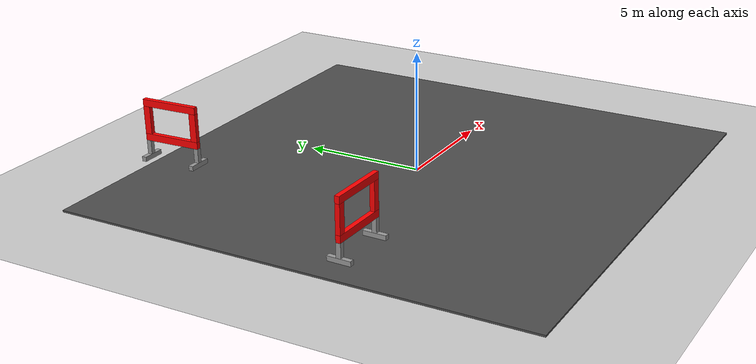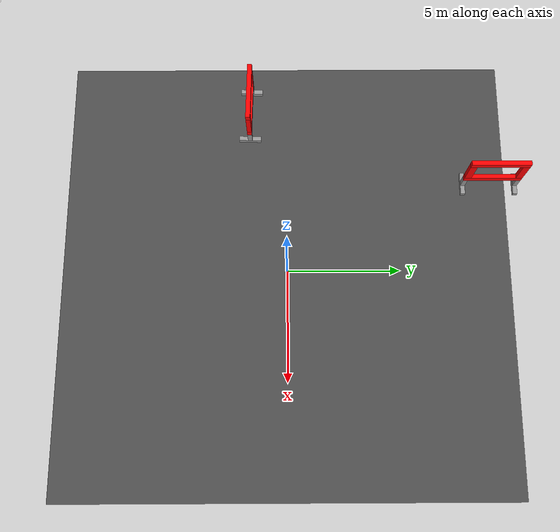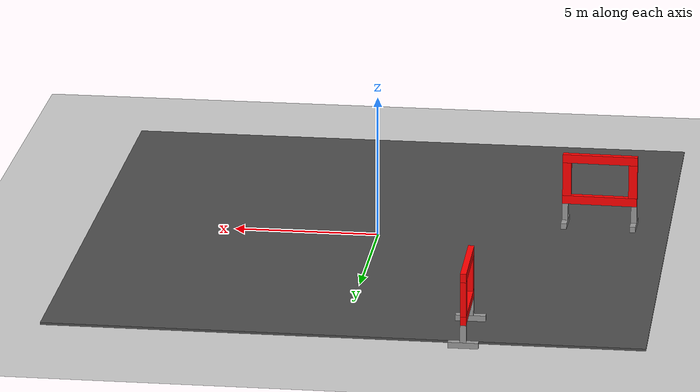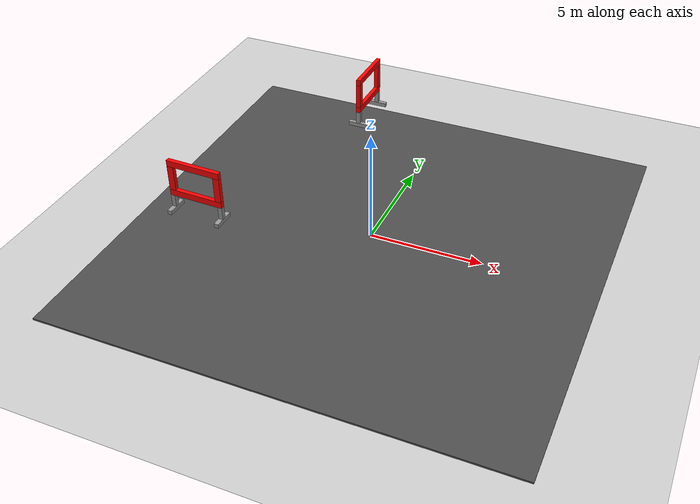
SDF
<sdf version="1.6">
 <world name="default">
  <model name="ground_plane">
   <static>1</static>
   <link name="link">
    <collision name="collision">
     <geometry><plane><normal>0 0 1</normal><size>100 100</size></plane></geometry>
     <surface>
      <contact><collide_bitmask>65535</collide_bitmask></contact>
      <friction><ode><mu>100</mu><mu2>50</mu2></ode></friction>
     </surface>
    </collision>
    <visual name="visual">
     <cast_shadows>0</cast_shadows>
     <geometry><plane><normal>0 0 1</normal><size>100 100</size></plane></geometry>
     <material>
      <script><uri>file://media/materials/scripts/gazebo.material</uri><name>Gazebo/Grey</name></script>
     </material>
    </visual>
   </link>
  </model>
  <model name="asphalt_plane">
   <static>1</static>
   <link name="link">
    <collision name="collision"><geometry><box><size>20 20 0.1</size></box></geometry></collision>
    <visual name="visual">
     <cast_shadows>0</cast_shadows>
     <geometry><box><size>20 20 0.1</size></box></geometry>
     <material>
      <script>
       <uri>model://asphalt_plane/materials/scripts</uri>
       <uri>model://asphalt_plane/materials/textures</uri>
       <name>vrc/asphalt</name>
      </script>
     </material>
    </visual>
   </link>
   <pose>-0.002774 -0.037133 0 0 -0 0</pose>
  </model>
  <model name="door_2_1.2_0_clone">
   <model name="door">
    <link name="link_0">
     <inertial>
      <mass>1</mass>
      <inertia>
       <ixx>0.166667</ixx>
       <ixy>0</ixy>
       <ixz>0</ixz>
       <iyy>0.166667</iyy>
       <iyz>0</iyz>
       <izz>0.166667</izz>
      </inertia>
     </inertial>
     <pose>-0.195931 0.139969 -0.0875 0 -0 0</pose>
     <visual name="visual">
      <geometry><box><size>0.2 1 0.2</size></box></geometry>
      <material>
       <lighting>1</lighting>
       <script><uri>file://media/materials/scripts/gazebo.material</uri><name>Gazebo/Grey</name></script>
       <shader type="pixel"><normal_map>__default__</normal_map></shader>
       <ambient>0.4 0.4 0.4 1</ambient>
       <diffuse>0.7 0.7 0.7 1</diffuse>
       <specular>0.01 0.01 0.01 1</specular>
       <emissive>0 0 0 1</emissive>
      </material>
     </visual>
     <collision name="collision">
      <geometry><box><size>0.2 1 0.2</size></box></geometry>
      <surface>
       <friction>
        <ode><mu>1</mu><mu2>1</mu2><fdir1>0 0 0</fdir1><slip1>0</slip1><slip2>0</slip2></ode>
        <torsional>
         <coefficient>1</coefficient>
         <patch_radius>0</patch_radius>
         <surface_radius>0</surface_radius>
         <use_patch_radius>1</use_patch_radius>
         <ode><slip>0</slip></ode>
        </torsional>
       </friction>
       <bounce><restitution_coefficient>0</restitution_coefficient><threshold>1e+06</threshold></bounce>
       <contact>
        <collide_without_contact>0</collide_without_contact>
        <collide_without_contact_bitmask>1</collide_without_contact_bitmask>
        <collide_bitmask>1</collide_bitmask>
        <ode>
         <soft_cfm>0</soft_cfm>
         <soft_erp>0.2</soft_erp>
         <kp>1e+13</kp>
         <kd>1</kd>
         <max_vel>0.01</max_vel>
         <min_depth>0</min_depth>
        </ode>
        <bullet>
         <split_impulse>1</split_impulse>
         <split_impulse_penetration_threshold>-0.01</split_impulse_penetration_threshold>
         <soft_cfm>0</soft_cfm>
         <soft_erp>0.2</soft_erp>
         <kp>1e+13</kp>
         <kd>1</kd>
        </bullet>
       </contact>
      </surface>
     </collision>
    </link>
    <link name="link_0_clone">
     <inertial>
      <mass>1</mass>
      <inertia>
       <ixx>0.166667</ixx>
       <ixy>0</ixy>
       <ixz>0</ixz>
       <iyy>0.166667</iyy>
       <iyz>0</iyz>
       <izz>0.166667</izz>
      </inertia>
     </inertial>
     <pose>2.20407 0.139969 -0.0875 0 -0 0</pose>
     <visual name="visual">
      <geometry><box><size>0.2 1 0.2</size></box></geometry>
      <material>
       <lighting>1</lighting>
       <script><uri>file://media/materials/scripts/gazebo.material</uri><name>Gazebo/Grey</name></script>
       <shader type="pixel"><normal_map>__default__</normal_map></shader>
       <ambient>0.4 0.4 0.4 1</ambient>
       <diffuse>0.7 0.7 0.7 1</diffuse>
       <specular>0.01 0.01 0.01 1</specular>
       <emissive>0 0 0 1</emissive>
      </material>
     </visual>
     <collision name="collision">
      <geometry><box><size>0.2 1 0.2</size></box></geometry>
      <surface>
       <friction>
        <ode><mu>1</mu><mu2>1</mu2><fdir1>0 0 0</fdir1><slip1>0</slip1><slip2>0</slip2></ode>
        <torsional>
         <coefficient>1</coefficient>
         <patch_radius>0</patch_radius>
         <surface_radius>0</surface_radius>
         <use_patch_radius>1</use_patch_radius>
         <ode><slip>0</slip></ode>
        </torsional>
       </friction>
       <bounce><restitution_coefficient>0</restitution_coefficient><threshold>1e+06</threshold></bounce>
       <contact>
        <collide_without_contact>0</collide_without_contact>
        <collide_without_contact_bitmask>1</collide_without_contact_bitmask>
        <collide_bitmask>1</collide_bitmask>
        <ode>
         <soft_cfm>0</soft_cfm>
         <soft_erp>0.2</soft_erp>
         <kp>1e+13</kp>
         <kd>1</kd>
         <max_vel>0.01</max_vel>
         <min_depth>0</min_depth>
        </ode>
        <bullet>
         <split_impulse>1</split_impulse>
         <split_impulse_penetration_threshold>-0.01</split_impulse_penetration_threshold>
         <soft_cfm>0</soft_cfm>
         <soft_erp>0.2</soft_erp>
         <kp>1e+13</kp>
         <kd>1</kd>
        </bullet>
       </contact>
      </surface>
     </collision>
    </link>
    <link name="link_1">
     <inertial>
      <mass>1</mass>
      <inertia>
       <ixx>0.166667</ixx>
       <ixy>0</ixy>
       <ixz>0</ixz>
       <iyy>0.166667</iyy>
       <iyz>0</iyz>
       <izz>0.166667</izz>
      </inertia>
     </inertial>
     <pose>-0.195931 0.139969 0.3125 0 -0 0</pose>
     <visual name="visual">
      <geometry><box><size>0.2 0.2 0.6</size></box></geometry>
      <material>
       <lighting>1</lighting>
       <script><uri>file://media/materials/scripts/gazebo.material</uri><name>Gazebo/Grey</name></script>
       <shader type="pixel"><normal_map>__default__</normal_map></shader>
       <ambient>0.4 0.4 0.4 1</ambient>
       <diffuse>0.7 0.7 0.7 1</diffuse>
       <specular>0.01 0.01 0.01 1</specular>
       <emissive>0 0 0 1</emissive>
      </material>
     </visual>
     <collision name="collision">
      <geometry><box><size>0.2 0.2 0.6</size></box></geometry>
      <surface>
       <friction>
        <ode><mu>1</mu><mu2>1</mu2><fdir1>0 0 0</fdir1><slip1>0</slip1><slip2>0</slip2></ode>
        <torsional>
         <coefficient>1</coefficient>
         <patch_radius>0</patch_radius>
         <surface_radius>0</surface_radius>
         <use_patch_radius>1</use_patch_radius>
         <ode><slip>0</slip></ode>
        </torsional>
       </friction>
       <bounce><restitution_coefficient>0</restitution_coefficient><threshold>1e+06</threshold></bounce>
       <contact>
        <collide_without_contact>0</collide_without_contact>
        <collide_without_contact_bitmask>1</collide_without_contact_bitmask>
        <collide_bitmask>1</collide_bitmask>
        <ode>
         <soft_cfm>0</soft_cfm>
         <soft_erp>0.2</soft_erp>
         <kp>1e+13</kp>
         <kd>1</kd>
         <max_vel>0.01</max_vel>
         <min_depth>0</min_depth>
        </ode>
        <bullet>
         <split_impulse>1</split_impulse>
         <split_impulse_penetration_threshold>-0.01</split_impulse_penetration_threshold>
         <soft_cfm>0</soft_cfm>
         <soft_erp>0.2</soft_erp>
         <kp>1e+13</kp>
         <kd>1</kd>
        </bullet>
       </contact>
      </surface>
     </collision>
    </link>
    <link name="link_1_clone">
     <inertial>
      <mass>1</mass>
      <inertia>
       <ixx>0.166667</ixx>
       <ixy>0</ixy>
       <ixz>0</ixz>
       <iyy>0.166667</iyy>
       <iyz>0</iyz>
       <izz>0.166667</izz>
      </inertia>
     </inertial>
     <pose>2.20407 0.139969 0.3125 0 -0 0</pose>
     <visual name="visual">
      <geometry><box><size>0.2 0.2 0.6</size></box></geometry>
      <material>
       <lighting>1</lighting>
       <script><uri>file://media/materials/scripts/gazebo.material</uri><name>Gazebo/Grey</name></script>
       <shader type="pixel"><normal_map>__default__</normal_map></shader>
       <ambient>0.4 0.4 0.4 1</ambient>
       <diffuse>0.7 0.7 0.7 1</diffuse>
       <specular>0.01 0.01 0.01 1</specular>
       <emissive>0 0 0 1</emissive>
      </material>
     </visual>
     <collision name="collision">
      <geometry><box><size>0.2 0.2 0.6</size></box></geometry>
      <surface>
       <friction>
        <ode><mu>1</mu><mu2>1</mu2><fdir1>0 0 0</fdir1><slip1>0</slip1><slip2>0</slip2></ode>
        <torsional>
         <coefficient>1</coefficient>
         <patch_radius>0</patch_radius>
         <surface_radius>0</surface_radius>
         <use_patch_radius>1</use_patch_radius>
         <ode><slip>0</slip></ode>
        </torsional>
       </friction>
       <bounce><restitution_coefficient>0</restitution_coefficient><threshold>1e+06</threshold></bounce>
       <contact>
        <collide_without_contact>0</collide_without_contact>
        <collide_without_contact_bitmask>1</collide_without_contact_bitmask>
        <collide_bitmask>1</collide_bitmask>
        <ode>
         <soft_cfm>0</soft_cfm>
         <soft_erp>0.2</soft_erp>
         <kp>1e+13</kp>
         <kd>1</kd>
         <max_vel>0.01</max_vel>
         <min_depth>0</min_depth>
        </ode>
        <bullet>
         <split_impulse>1</split_impulse>
         <split_impulse_penetration_threshold>-0.01</split_impulse_penetration_threshold>
         <soft_cfm>0</soft_cfm>
         <soft_erp>0.2</soft_erp>
         <kp>1e+13</kp>
         <kd>1</kd>
        </bullet>
       </contact>
      </surface>
     </collision>
    </link>
    <link name="link_2">
     <inertial>
      <mass>1</mass>
      <inertia>
       <ixx>0.166667</ixx>
       <ixy>0</ixy>
       <ixz>0</ixz>
       <iyy>0.166667</iyy>
       <iyz>0</iyz>
       <izz>0.166667</izz>
      </inertia>
     </inertial>
     <pose>1.00407 0.139969 0.7625 0 -0 0</pose>
     <visual name="visual">
      <geometry><box><size>2.6 0.2 0.3</size></box></geometry>
      <material>
       <lighting>1</lighting>
       <script><uri>file://media/materials/scripts/gazebo.material</uri><name>Gazebo/Grey</name></script>
       <shader type="pixel"><normal_map>__default__</normal_map></shader>
       <ambient>1 0 0 1</ambient>
       <diffuse>0.7 0.7 0.7 1</diffuse>
       <specular>0.01 0.01 0.01 1</specular>
       <emissive>0 0 0 1</emissive>
      </material>
     </visual>
     <collision name="collision">
      <geometry><box><size>2.6 0.2 0.3</size></box></geometry>
      <surface>
       <friction>
        <ode><mu>1</mu><mu2>1</mu2><fdir1>0 0 0</fdir1><slip1>0</slip1><slip2>0</slip2></ode>
        <torsional>
         <coefficient>1</coefficient>
         <patch_radius>0</patch_radius>
         <surface_radius>0</surface_radius>
         <use_patch_radius>1</use_patch_radius>
         <ode><slip>0</slip></ode>
        </torsional>
       </friction>
       <bounce><restitution_coefficient>0</restitution_coefficient><threshold>1e+06</threshold></bounce>
       <contact>
        <collide_without_contact>0</collide_without_contact>
        <collide_without_contact_bitmask>1</collide_without_contact_bitmask>
        <collide_bitmask>1</collide_bitmask>
        <ode>
         <soft_cfm>0</soft_cfm>
         <soft_erp>0.2</soft_erp>
         <kp>1e+13</kp>
         <kd>1</kd>
         <max_vel>0.01</max_vel>
         <min_depth>0</min_depth>
        </ode>
        <bullet>
         <split_impulse>1</split_impulse>
         <split_impulse_penetration_threshold>-0.01</split_impulse_penetration_threshold>
         <soft_cfm>0</soft_cfm>
         <soft_erp>0.2</soft_erp>
         <kp>1e+13</kp>
         <kd>1</kd>
        </bullet>
       </contact>
      </surface>
     </collision>
    </link>
    <link name="link_2_clone">
     <inertial>
      <mass>1</mass>
      <inertia>
       <ixx>0.166667</ixx>
       <ixy>0</ixy>
       <ixz>0</ixz>
       <iyy>0.166667</iyy>
       <iyz>0</iyz>
       <izz>0.166667</izz>
      </inertia>
     </inertial>
     <pose>1.00407 0.139969 2.2625 0 -0 0</pose>
     <visual name="visual">
      <geometry><box><size>2.6 0.2 0.3</size></box></geometry>
      <material>
       <lighting>1</lighting>
       <script><uri>file://media/materials/scripts/gazebo.material</uri><name>Gazebo/Grey</name></script>
       <shader type="pixel"><normal_map>__default__</normal_map></shader>
       <ambient>1 0 0 1</ambient>
       <diffuse>0 0 0 1</diffuse>
       <specular>0 0 0 1</specular>
       <emissive>0 0 0 1</emissive>
      </material>
     </visual>
     <collision name="collision">
      <geometry><box><size>2.6 0.2 0.3</size></box></geometry>
      <surface>
       <friction>
        <ode><mu>1</mu><mu2>1</mu2><fdir1>0 0 0</fdir1><slip1>0</slip1><slip2>0</slip2></ode>
        <torsional>
         <coefficient>1</coefficient>
         <patch_radius>0</patch_radius>
         <surface_radius>0</surface_radius>
         <use_patch_radius>1</use_patch_radius>
         <ode><slip>0</slip></ode>
        </torsional>
       </friction>
       <bounce><restitution_coefficient>0</restitution_coefficient><threshold>1e+06</threshold></bounce>
       <contact>
        <collide_without_contact>0</collide_without_contact>
        <collide_without_contact_bitmask>1</collide_without_contact_bitmask>
        <collide_bitmask>1</collide_bitmask>
        <ode>
         <soft_cfm>0</soft_cfm>
         <soft_erp>0.2</soft_erp>
         <kp>1e+13</kp>
         <kd>1</kd>
         <max_vel>0.01</max_vel>
         <min_depth>0</min_depth>
        </ode>
        <bullet>
         <split_impulse>1</split_impulse>
         <split_impulse_penetration_threshold>-0.01</split_impulse_penetration_threshold>
         <soft_cfm>0</soft_cfm>
         <soft_erp>0.2</soft_erp>
         <kp>1e+13</kp>
         <kd>1</kd>
        </bullet>
       </contact>
      </surface>
     </collision>
    </link>
    <link name="link_3">
     <inertial>
      <mass>1</mass>
      <inertia>
       <ixx>0.166667</ixx>
       <ixy>0</ixy>
       <ixz>0</ixz>
       <iyy>0.166667</iyy>
       <iyz>0</iyz>
       <izz>0.166667</izz>
      </inertia>
     </inertial>
     <pose>-0.145931 0.139969 1.5125 0 -0 0</pose>
     <visual name="visual">
      <geometry><box><size>0.3 0.2 1.2</size></box></geometry>
      <material>
       <lighting>1</lighting>
       <script><uri>file://media/materials/scripts/gazebo.material</uri><name>Gazebo/Grey</name></script>
       <shader type="pixel"><normal_map>__default__</normal_map></shader>
       <ambient>1 0 0 1</ambient>
       <diffuse>0.7 0.7 0.7 1</diffuse>
       <specular>0.01 0.01 0.01 1</specular>
       <emissive>0 0 0 1</emissive>
      </material>
     </visual>
     <collision name="collision">
      <geometry><box><size>0.3 0.2 1.2</size></box></geometry>
      <surface>
       <friction>
        <ode><mu>1</mu><mu2>1</mu2><fdir1>0 0 0</fdir1><slip1>0</slip1><slip2>0</slip2></ode>
        <torsional>
         <coefficient>1</coefficient>
         <patch_radius>0</patch_radius>
         <surface_radius>0</surface_radius>
         <use_patch_radius>1</use_patch_radius>
         <ode><slip>0</slip></ode>
        </torsional>
       </friction>
       <bounce><restitution_coefficient>0</restitution_coefficient><threshold>1e+06</threshold></bounce>
       <contact>
        <collide_without_contact>0</collide_without_contact>
        <collide_without_contact_bitmask>1</collide_without_contact_bitmask>
        <collide_bitmask>1</collide_bitmask>
        <ode>
         <soft_cfm>0</soft_cfm>
         <soft_erp>0.2</soft_erp>
         <kp>1e+13</kp>
         <kd>1</kd>
         <max_vel>0.01</max_vel>
         <min_depth>0</min_depth>
        </ode>
        <bullet>
         <split_impulse>1</split_impulse>
         <split_impulse_penetration_threshold>-0.01</split_impulse_penetration_threshold>
         <soft_cfm>0</soft_cfm>
         <soft_erp>0.2</soft_erp>
         <kp>1e+13</kp>
         <kd>1</kd>
        </bullet>
       </contact>
      </surface>
     </collision>
    </link>
    <link name="link_3_clone">
     <inertial>
      <mass>1</mass>
      <inertia>
       <ixx>0.166667</ixx>
       <ixy>0</ixy>
       <ixz>0</ixz>
       <iyy>0.166667</iyy>
       <iyz>0</iyz>
       <izz>0.166667</izz>
      </inertia>
     </inertial>
     <pose>2.15407 0.139969 1.5125 0 -0 0</pose>
     <visual name="visual">
      <geometry><box><size>0.3 0.2 1.2</size></box></geometry>
      <material>
       <lighting>1</lighting>
       <script><uri>file://media/materials/scripts/gazebo.material</uri><name>Gazebo/Grey</name></script>
       <shader type="pixel"><normal_map>__default__</normal_map></shader>
       <ambient>1 0 0 1</ambient>
       <diffuse>0.7 0.7 0.7 1</diffuse>
       <specular>0.01 0.01 0.01 1</specular>
       <emissive>0 0 0 1</emissive>
      </material>
     </visual>
     <collision name="collision">
      <geometry><box><size>0.3 0.2 1.2</size></box></geometry>
      <surface>
       <friction>
        <ode><mu>1</mu><mu2>1</mu2><fdir1>0 0 0</fdir1><slip1>0</slip1><slip2>0</slip2></ode>
        <torsional>
         <coefficient>1</coefficient>
         <patch_radius>0</patch_radius>
         <surface_radius>0</surface_radius>
         <use_patch_radius>1</use_patch_radius>
         <ode><slip>0</slip></ode>
        </torsional>
       </friction>
       <bounce><restitution_coefficient>0</restitution_coefficient><threshold>1e+06</threshold></bounce>
       <contact>
        <collide_without_contact>0</collide_without_contact>
        <collide_without_contact_bitmask>1</collide_without_contact_bitmask>
        <collide_bitmask>1</collide_bitmask>
        <ode>
         <soft_cfm>0</soft_cfm>
         <soft_erp>0.2</soft_erp>
         <kp>1e+13</kp>
         <kd>1</kd>
         <max_vel>0.01</max_vel>
         <min_depth>0</min_depth>
        </ode>
        <bullet>
         <split_impulse>1</split_impulse>
         <split_impulse_penetration_threshold>-0.01</split_impulse_penetration_threshold>
         <soft_cfm>0</soft_cfm>
         <soft_erp>0.2</soft_erp>
         <kp>1e+13</kp>
         <kd>1</kd>
        </bullet>
       </contact>
      </surface>
     </collision>
    </link>
    <joint name="link_0_JOINT_0" type="fixed">
     <parent>link_0</parent>
     <child>link_0_clone</child>
     <physics>
      <ode><limit><cfm>0</cfm><erp>0.2</erp></limit><suspension><cfm>0</cfm><erp>0.2</erp></suspension></ode>
     </physics>
    </joint>
    <joint name="link_0_JOINT_1" type="fixed">
     <parent>link_0</parent>
     <child>link_1</child>
     <physics>
      <ode><limit><cfm>0</cfm><erp>0.2</erp></limit><suspension><cfm>0</cfm><erp>0.2</erp></suspension></ode>
     </physics>
    </joint>
    <joint name="link_0_clone_JOINT_2" type="fixed">
     <parent>link_0_clone</parent>
     <child>link_1_clone</child>
     <physics>
      <ode><limit><cfm>0</cfm><erp>0.2</erp></limit><suspension><cfm>0</cfm><erp>0.2</erp></suspension></ode>
     </physics>
    </joint>
    <joint name="link_1_JOINT_3" type="fixed">
     <parent>link_1</parent>
     <child>link_2</child>
     <physics>
      <ode><limit><cfm>0</cfm><erp>0.2</erp></limit><suspension><cfm>0</cfm><erp>0.2</erp></suspension></ode>
     </physics>
    </joint>
    <joint name="link_2_JOINT_4" type="fixed">
     <parent>link_2</parent>
     <child>link_3</child>
     <physics>
      <ode><limit><cfm>0</cfm><erp>0.2</erp></limit><suspension><cfm>0</cfm><erp>0.2</erp></suspension></ode>
     </physics>
    </joint>
    <joint name="link_2_JOINT_5" type="fixed">
     <parent>link_2</parent>
     <child>link_3_clone</child>
     <physics>
      <ode><limit><cfm>0</cfm><erp>0.2</erp></limit><suspension><cfm>0</cfm><erp>0.2</erp></suspension></ode>
     </physics>
    </joint>
    <joint name="link_2_JOINT_6" type="fixed">
     <parent>link_2</parent>
     <child>link_2_clone</child>
     <physics>
      <ode><limit><cfm>0</cfm><erp>0.2</erp></limit><suspension><cfm>0</cfm><erp>0.2</erp></suspension></ode>
     </physics>
    </joint>
    <static>0</static>
   </model>
   <static>0</static>
   <pose>-3.93041 8.21757 0.235454 -1e-06 0.020905 1.57381</pose>
  </model>
  <model name="door_2_1.2_0_clone_0_clone">
   <model name="door">
    <link name="link_0">
     <inertial>
      <mass>1</mass>
      <inertia>
       <ixx>0.166667</ixx>
       <ixy>0</ixy>
       <ixz>0</ixz>
       <iyy>0.166667</iyy>
       <iyz>0</iyz>
       <izz>0.166667</izz>
      </inertia>
     </inertial>
     <pose>-0.195931 0.139969 -0.0875 0 -0 0</pose>
     <visual name="visual">
      <geometry><box><size>0.2 1 0.2</size></box></geometry>
      <material>
       <lighting>1</lighting>
       <script><uri>file://media/materials/scripts/gazebo.material</uri><name>Gazebo/Grey</name></script>
       <shader type="pixel"><normal_map>__default__</normal_map></shader>
       <ambient>0.4 0.4 0.4 1</ambient>
       <diffuse>0.7 0.7 0.7 1</diffuse>
       <specular>0.01 0.01 0.01 1</specular>
       <emissive>0 0 0 1</emissive>
      </material>
     </visual>
     <collision name="collision">
      <geometry><box><size>0.2 1 0.2</size></box></geometry>
      <surface>
       <friction>
        <ode><mu>1</mu><mu2>1</mu2><fdir1>0 0 0</fdir1><slip1>0</slip1><slip2>0</slip2></ode>
        <torsional>
         <coefficient>1</coefficient>
         <patch_radius>0</patch_radius>
         <surface_radius>0</surface_radius>
         <use_patch_radius>1</use_patch_radius>
         <ode><slip>0</slip></ode>
        </torsional>
       </friction>
       <bounce><restitution_coefficient>0</restitution_coefficient><threshold>1e+06</threshold></bounce>
       <contact>
        <collide_without_contact>0</collide_without_contact>
        <collide_without_contact_bitmask>1</collide_without_contact_bitmask>
        <collide_bitmask>1</collide_bitmask>
        <ode>
         <soft_cfm>0</soft_cfm>
         <soft_erp>0.2</soft_erp>
         <kp>1e+13</kp>
         <kd>1</kd>
         <max_vel>0.01</max_vel>
         <min_depth>0</min_depth>
        </ode>
        <bullet>
         <split_impulse>1</split_impulse>
         <split_impulse_penetration_threshold>-0.01</split_impulse_penetration_threshold>
         <soft_cfm>0</soft_cfm>
         <soft_erp>0.2</soft_erp>
         <kp>1e+13</kp>
         <kd>1</kd>
        </bullet>
       </contact>
      </surface>
     </collision>
    </link>
    <link name="link_0_clone">
     <inertial>
      <mass>1</mass>
      <inertia>
       <ixx>0.166667</ixx>
       <ixy>0</ixy>
       <ixz>0</ixz>
       <iyy>0.166667</iyy>
       <iyz>0</iyz>
       <izz>0.166667</izz>
      </inertia>
     </inertial>
     <pose>2.20407 0.139969 -0.0875 0 -0 0</pose>
     <visual name="visual">
      <geometry><box><size>0.2 1 0.2</size></box></geometry>
      <material>
       <lighting>1</lighting>
       <script><uri>file://media/materials/scripts/gazebo.material</uri><name>Gazebo/Grey</name></script>
       <shader type="pixel"><normal_map>__default__</normal_map></shader>
       <ambient>0.4 0.4 0.4 1</ambient>
       <diffuse>0.7 0.7 0.7 1</diffuse>
       <specular>0.01 0.01 0.01 1</specular>
       <emissive>0 0 0 1</emissive>
      </material>
     </visual>
     <collision name="collision">
      <geometry><box><size>0.2 1 0.2</size></box></geometry>
      <surface>
       <friction>
        <ode><mu>1</mu><mu2>1</mu2><fdir1>0 0 0</fdir1><slip1>0</slip1><slip2>0</slip2></ode>
        <torsional>
         <coefficient>1</coefficient>
         <patch_radius>0</patch_radius>
         <surface_radius>0</surface_radius>
         <use_patch_radius>1</use_patch_radius>
         <ode><slip>0</slip></ode>
        </torsional>
       </friction>
       <bounce><restitution_coefficient>0</restitution_coefficient><threshold>1e+06</threshold></bounce>
       <contact>
        <collide_without_contact>0</collide_without_contact>
        <collide_without_contact_bitmask>1</collide_without_contact_bitmask>
        <collide_bitmask>1</collide_bitmask>
        <ode>
         <soft_cfm>0</soft_cfm>
         <soft_erp>0.2</soft_erp>
         <kp>1e+13</kp>
         <kd>1</kd>
         <max_vel>0.01</max_vel>
         <min_depth>0</min_depth>
        </ode>
        <bullet>
         <split_impulse>1</split_impulse>
         <split_impulse_penetration_threshold>-0.01</split_impulse_penetration_threshold>
         <soft_cfm>0</soft_cfm>
         <soft_erp>0.2</soft_erp>
         <kp>1e+13</kp>
         <kd>1</kd>
        </bullet>
       </contact>
      </surface>
     </collision>
    </link>
    <link name="link_1">
     <inertial>
      <mass>1</mass>
      <inertia>
       <ixx>0.166667</ixx>
       <ixy>0</ixy>
       <ixz>0</ixz>
       <iyy>0.166667</iyy>
       <iyz>0</iyz>
       <izz>0.166667</izz>
      </inertia>
     </inertial>
     <pose>-0.195931 0.139969 0.3125 0 -0 0</pose>
     <visual name="visual">
      <geometry><box><size>0.2 0.2 0.6</size></box></geometry>
      <material>
       <lighting>1</lighting>
       <script><uri>file://media/materials/scripts/gazebo.material</uri><name>Gazebo/Grey</name></script>
       <shader type="pixel"><normal_map>__default__</normal_map></shader>
       <ambient>0.4 0.4 0.4 1</ambient>
       <diffuse>0.7 0.7 0.7 1</diffuse>
       <specular>0.01 0.01 0.01 1</specular>
       <emissive>0 0 0 1</emissive>
      </material>
     </visual>
     <collision name="collision">
      <geometry><box><size>0.2 0.2 0.6</size></box></geometry>
      <surface>
       <friction>
        <ode><mu>1</mu><mu2>1</mu2><fdir1>0 0 0</fdir1><slip1>0</slip1><slip2>0</slip2></ode>
        <torsional>
         <coefficient>1</coefficient>
         <patch_radius>0</patch_radius>
         <surface_radius>0</surface_radius>
         <use_patch_radius>1</use_patch_radius>
         <ode><slip>0</slip></ode>
        </torsional>
       </friction>
       <bounce><restitution_coefficient>0</restitution_coefficient><threshold>1e+06</threshold></bounce>
       <contact>
        <collide_without_contact>0</collide_without_contact>
        <collide_without_contact_bitmask>1</collide_without_contact_bitmask>
        <collide_bitmask>1</collide_bitmask>
        <ode>
         <soft_cfm>0</soft_cfm>
         <soft_erp>0.2</soft_erp>
         <kp>1e+13</kp>
         <kd>1</kd>
         <max_vel>0.01</max_vel>
         <min_depth>0</min_depth>
        </ode>
        <bullet>
         <split_impulse>1</split_impulse>
         <split_impulse_penetration_threshold>-0.01</split_impulse_penetration_threshold>
         <soft_cfm>0</soft_cfm>
         <soft_erp>0.2</soft_erp>
         <kp>1e+13</kp>
         <kd>1</kd>
        </bullet>
       </contact>
      </surface>
     </collision>
    </link>
    <link name="link_1_clone">
     <inertial>
      <mass>1</mass>
      <inertia>
       <ixx>0.166667</ixx>
       <ixy>0</ixy>
       <ixz>0</ixz>
       <iyy>0.166667</iyy>
       <iyz>0</iyz>
       <izz>0.166667</izz>
      </inertia>
     </inertial>
     <pose>2.20407 0.139969 0.3125 0 -0 0</pose>
     <visual name="visual">
      <geometry><box><size>0.2 0.2 0.6</size></box></geometry>
      <material>
       <lighting>1</lighting>
       <script><uri>file://media/materials/scripts/gazebo.material</uri><name>Gazebo/Grey</name></script>
       <shader type="pixel"><normal_map>__default__</normal_map></shader>
       <ambient>0.4 0.4 0.4 1</ambient>
       <diffuse>0.7 0.7 0.7 1</diffuse>
       <specular>0.01 0.01 0.01 1</specular>
       <emissive>0 0 0 1</emissive>
      </material>
     </visual>
     <collision name="collision">
      <geometry><box><size>0.2 0.2 0.6</size></box></geometry>
      <surface>
       <friction>
        <ode><mu>1</mu><mu2>1</mu2><fdir1>0 0 0</fdir1><slip1>0</slip1><slip2>0</slip2></ode>
        <torsional>
         <coefficient>1</coefficient>
         <patch_radius>0</patch_radius>
         <surface_radius>0</surface_radius>
         <use_patch_radius>1</use_patch_radius>
         <ode><slip>0</slip></ode>
        </torsional>
       </friction>
       <bounce><restitution_coefficient>0</restitution_coefficient><threshold>1e+06</threshold></bounce>
       <contact>
        <collide_without_contact>0</collide_without_contact>
        <collide_without_contact_bitmask>1</collide_without_contact_bitmask>
        <collide_bitmask>1</collide_bitmask>
        <ode>
         <soft_cfm>0</soft_cfm>
         <soft_erp>0.2</soft_erp>
         <kp>1e+13</kp>
         <kd>1</kd>
         <max_vel>0.01</max_vel>
         <min_depth>0</min_depth>
        </ode>
        <bullet>
         <split_impulse>1</split_impulse>
         <split_impulse_penetration_threshold>-0.01</split_impulse_penetration_threshold>
         <soft_cfm>0</soft_cfm>
         <soft_erp>0.2</soft_erp>
         <kp>1e+13</kp>
         <kd>1</kd>
        </bullet>
       </contact>
      </surface>
     </collision>
    </link>
    <link name="link_2">
     <inertial>
      <mass>1</mass>
      <inertia>
       <ixx>0.166667</ixx>
       <ixy>0</ixy>
       <ixz>0</ixz>
       <iyy>0.166667</iyy>
       <iyz>0</iyz>
       <izz>0.166667</izz>
      </inertia>
     </inertial>
     <pose>1.00407 0.139969 0.7625 0 -0 0</pose>
     <visual name="visual">
      <geometry><box><size>2.6 0.2 0.3</size></box></geometry>
      <material>
       <lighting>1</lighting>
       <script><uri>file://media/materials/scripts/gazebo.material</uri><name>Gazebo/Grey</name></script>
       <shader type="pixel"><normal_map>__default__</normal_map></shader>
       <ambient>1 0 0 1</ambient>
       <diffuse>0.7 0.7 0.7 1</diffuse>
       <specular>0.01 0.01 0.01 1</specular>
       <emissive>0 0 0 1</emissive>
      </material>
     </visual>
     <collision name="collision">
      <geometry><box><size>2.6 0.2 0.3</size></box></geometry>
      <surface>
       <friction>
        <ode><mu>1</mu><mu2>1</mu2><fdir1>0 0 0</fdir1><slip1>0</slip1><slip2>0</slip2></ode>
        <torsional>
         <coefficient>1</coefficient>
         <patch_radius>0</patch_radius>
         <surface_radius>0</surface_radius>
         <use_patch_radius>1</use_patch_radius>
         <ode><slip>0</slip></ode>
        </torsional>
       </friction>
       <bounce><restitution_coefficient>0</restitution_coefficient><threshold>1e+06</threshold></bounce>
       <contact>
        <collide_without_contact>0</collide_without_contact>
        <collide_without_contact_bitmask>1</collide_without_contact_bitmask>
        <collide_bitmask>1</collide_bitmask>
        <ode>
         <soft_cfm>0</soft_cfm>
         <soft_erp>0.2</soft_erp>
         <kp>1e+13</kp>
         <kd>1</kd>
         <max_vel>0.01</max_vel>
         <min_depth>0</min_depth>
        </ode>
        <bullet>
         <split_impulse>1</split_impulse>
         <split_impulse_penetration_threshold>-0.01</split_impulse_penetration_threshold>
         <soft_cfm>0</soft_cfm>
         <soft_erp>0.2</soft_erp>
         <kp>1e+13</kp>
         <kd>1</kd>
        </bullet>
       </contact>
      </surface>
     </collision>
    </link>
    <link name="link_2_clone">
     <inertial>
      <mass>1</mass>
      <inertia>
       <ixx>0.166667</ixx>
       <ixy>0</ixy>
       <ixz>0</ixz>
       <iyy>0.166667</iyy>
       <iyz>0</iyz>
       <izz>0.166667</izz>
      </inertia>
     </inertial>
     <pose>1.00407 0.139969 2.2625 0 -0 0</pose>
     <visual name="visual">
      <geometry><box><size>2.6 0.2 0.3</size></box></geometry>
      <material>
       <lighting>1</lighting>
       <script><uri>file://media/materials/scripts/gazebo.material</uri><name>Gazebo/Grey</name></script>
       <shader type="pixel"><normal_map>__default__</normal_map></shader>
       <ambient>1 0 0 1</ambient>
       <diffuse>0 0 0 1</diffuse>
       <specular>0 0 0 1</specular>
       <emissive>0 0 0 1</emissive>
      </material>
     </visual>
     <collision name="collision">
      <geometry><box><size>2.6 0.2 0.3</size></box></geometry>
      <surface>
       <friction>
        <ode><mu>1</mu><mu2>1</mu2><fdir1>0 0 0</fdir1><slip1>0</slip1><slip2>0</slip2></ode>
        <torsional>
         <coefficient>1</coefficient>
         <patch_radius>0</patch_radius>
         <surface_radius>0</surface_radius>
         <use_patch_radius>1</use_patch_radius>
         <ode><slip>0</slip></ode>
        </torsional>
       </friction>
       <bounce><restitution_coefficient>0</restitution_coefficient><threshold>1e+06</threshold></bounce>
       <contact>
        <collide_without_contact>0</collide_without_contact>
        <collide_without_contact_bitmask>1</collide_without_contact_bitmask>
        <collide_bitmask>1</collide_bitmask>
        <ode>
         <soft_cfm>0</soft_cfm>
         <soft_erp>0.2</soft_erp>
         <kp>1e+13</kp>
         <kd>1</kd>
         <max_vel>0.01</max_vel>
         <min_depth>0</min_depth>
        </ode>
        <bullet>
         <split_impulse>1</split_impulse>
         <split_impulse_penetration_threshold>-0.01</split_impulse_penetration_threshold>
         <soft_cfm>0</soft_cfm>
         <soft_erp>0.2</soft_erp>
         <kp>1e+13</kp>
         <kd>1</kd>
        </bullet>
       </contact>
      </surface>
     </collision>
    </link>
    <link name="link_3">
     <inertial>
      <mass>1</mass>
      <inertia>
       <ixx>0.166667</ixx>
       <ixy>0</ixy>
       <ixz>0</ixz>
       <iyy>0.166667</iyy>
       <iyz>0</iyz>
       <izz>0.166667</izz>
      </inertia>
     </inertial>
     <pose>-0.145931 0.139969 1.5125 0 -0 0</pose>
     <visual name="visual">
      <geometry><box><size>0.3 0.2 1.2</size></box></geometry>
      <material>
       <lighting>1</lighting>
       <script><uri>file://media/materials/scripts/gazebo.material</uri><name>Gazebo/Grey</name></script>
       <shader type="pixel"><normal_map>__default__</normal_map></shader>
       <ambient>1 0 0 1</ambient>
       <diffuse>0.7 0.7 0.7 1</diffuse>
       <specular>0.01 0.01 0.01 1</specular>
       <emissive>0 0 0 1</emissive>
      </material>
     </visual>
     <collision name="collision">
      <geometry><box><size>0.3 0.2 1.2</size></box></geometry>
      <surface>
       <friction>
        <ode><mu>1</mu><mu2>1</mu2><fdir1>0 0 0</fdir1><slip1>0</slip1><slip2>0</slip2></ode>
        <torsional>
         <coefficient>1</coefficient>
         <patch_radius>0</patch_radius>
         <surface_radius>0</surface_radius>
         <use_patch_radius>1</use_patch_radius>
         <ode><slip>0</slip></ode>
        </torsional>
       </friction>
       <bounce><restitution_coefficient>0</restitution_coefficient><threshold>1e+06</threshold></bounce>
       <contact>
        <collide_without_contact>0</collide_without_contact>
        <collide_without_contact_bitmask>1</collide_without_contact_bitmask>
        <collide_bitmask>1</collide_bitmask>
        <ode>
         <soft_cfm>0</soft_cfm>
         <soft_erp>0.2</soft_erp>
         <kp>1e+13</kp>
         <kd>1</kd>
         <max_vel>0.01</max_vel>
         <min_depth>0</min_depth>
        </ode>
        <bullet>
         <split_impulse>1</split_impulse>
         <split_impulse_penetration_threshold>-0.01</split_impulse_penetration_threshold>
         <soft_cfm>0</soft_cfm>
         <soft_erp>0.2</soft_erp>
         <kp>1e+13</kp>
         <kd>1</kd>
        </bullet>
       </contact>
      </surface>
     </collision>
    </link>
    <link name="link_3_clone">
     <inertial>
      <mass>1</mass>
      <inertia>
       <ixx>0.166667</ixx>
       <ixy>0</ixy>
       <ixz>0</ixz>
       <iyy>0.166667</iyy>
       <iyz>0</iyz>
       <izz>0.166667</izz>
      </inertia>
     </inertial>
     <pose>2.15407 0.139969 1.5125 0 -0 0</pose>
     <visual name="visual">
      <geometry><box><size>0.3 0.2 1.2</size></box></geometry>
      <material>
       <lighting>1</lighting>
       <script><uri>file://media/materials/scripts/gazebo.material</uri><name>Gazebo/Grey</name></script>
       <shader type="pixel"><normal_map>__default__</normal_map></shader>
       <ambient>1 0 0 1</ambient>
       <diffuse>0.7 0.7 0.7 1</diffuse>
       <specular>0.01 0.01 0.01 1</specular>
       <emissive>0 0 0 1</emissive>
      </material>
     </visual>
     <collision name="collision">
      <geometry><box><size>0.3 0.2 1.2</size></box></geometry>
      <surface>
       <friction>
        <ode><mu>1</mu><mu2>1</mu2><fdir1>0 0 0</fdir1><slip1>0</slip1><slip2>0</slip2></ode>
        <torsional>
         <coefficient>1</coefficient>
         <patch_radius>0</patch_radius>
         <surface_radius>0</surface_radius>
         <use_patch_radius>1</use_patch_radius>
         <ode><slip>0</slip></ode>
        </torsional>
       </friction>
       <bounce><restitution_coefficient>0</restitution_coefficient><threshold>1e+06</threshold></bounce>
       <contact>
        <collide_without_contact>0</collide_without_contact>
        <collide_without_contact_bitmask>1</collide_without_contact_bitmask>
        <collide_bitmask>1</collide_bitmask>
        <ode>
         <soft_cfm>0</soft_cfm>
         <soft_erp>0.2</soft_erp>
         <kp>1e+13</kp>
         <kd>1</kd>
         <max_vel>0.01</max_vel>
         <min_depth>0</min_depth>
        </ode>
        <bullet>
         <split_impulse>1</split_impulse>
         <split_impulse_penetration_threshold>-0.01</split_impulse_penetration_threshold>
         <soft_cfm>0</soft_cfm>
         <soft_erp>0.2</soft_erp>
         <kp>1e+13</kp>
         <kd>1</kd>
        </bullet>
       </contact>
      </surface>
     </collision>
    </link>
    <joint name="link_0_JOINT_0" type="fixed">
     <parent>link_0</parent>
     <child>link_0_clone</child>
     <physics>
      <ode><limit><cfm>0</cfm><erp>0.2</erp></limit><suspension><cfm>0</cfm><erp>0.2</erp></suspension></ode>
     </physics>
    </joint>
    <joint name="link_0_JOINT_1" type="fixed">
     <parent>link_0</parent>
     <child>link_1</child>
     <physics>
      <ode><limit><cfm>0</cfm><erp>0.2</erp></limit><suspension><cfm>0</cfm><erp>0.2</erp></suspension></ode>
     </physics>
    </joint>
    <joint name="link_0_clone_JOINT_2" type="fixed">
     <parent>link_0_clone</parent>
     <child>link_1_clone</child>
     <physics>
      <ode><limit><cfm>0</cfm><erp>0.2</erp></limit><suspension><cfm>0</cfm><erp>0.2</erp></suspension></ode>
     </physics>
    </joint>
    <joint name="link_1_JOINT_3" type="fixed">
     <parent>link_1</parent>
     <child>link_2</child>
     <physics>
      <ode><limit><cfm>0</cfm><erp>0.2</erp></limit><suspension><cfm>0</cfm><erp>0.2</erp></suspension></ode>
     </physics>
    </joint>
    <joint name="link_2_JOINT_4" type="fixed">
     <parent>link_2</parent>
     <child>link_3</child>
     <physics>
      <ode><limit><cfm>0</cfm><erp>0.2</erp></limit><suspension><cfm>0</cfm><erp>0.2</erp></suspension></ode>
     </physics>
    </joint>
    <joint name="link_2_JOINT_5" type="fixed">
     <parent>link_2</parent>
     <child>link_3_clone</child>
     <physics>
      <ode><limit><cfm>0</cfm><erp>0.2</erp></limit><suspension><cfm>0</cfm><erp>0.2</erp></suspension></ode>
     </physics>
    </joint>
    <joint name="link_2_JOINT_6" type="fixed">
     <parent>link_2</parent>
     <child>link_2_clone</child>
     <physics>
      <ode><limit><cfm>0</cfm><erp>0.2</erp></limit><suspension><cfm>0</cfm><erp>0.2</erp></suspension></ode>
     </physics>
    </joint>
    <static>0</static>
   </model>
   <static>0</static>
   <pose>-6.5541 -1.5725 0.237361 -2e-06 9.3e-05 3.11715</pose>
  </model>
 </world>
</sdf>
